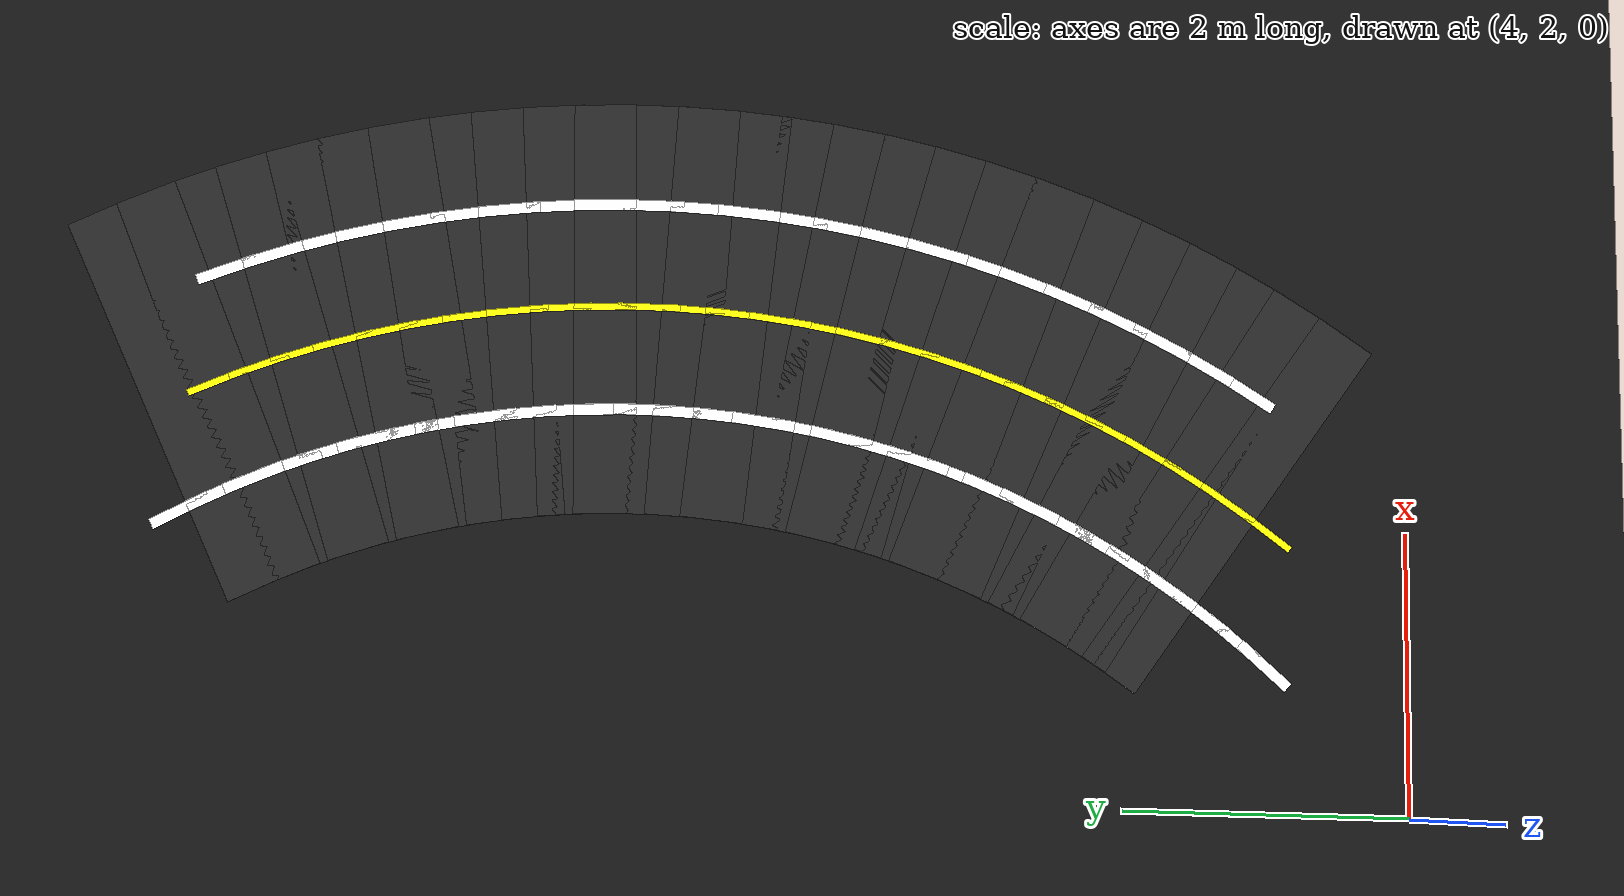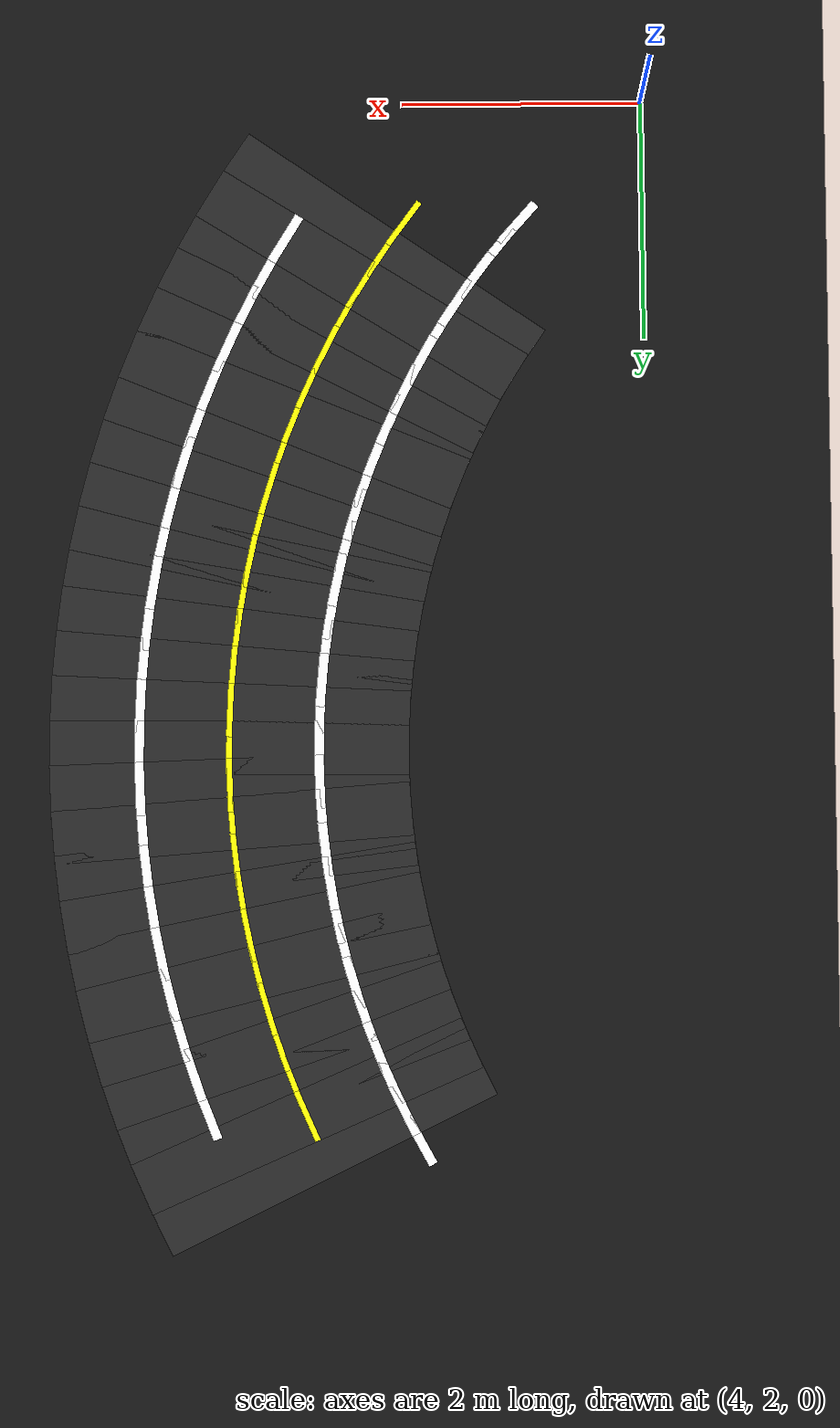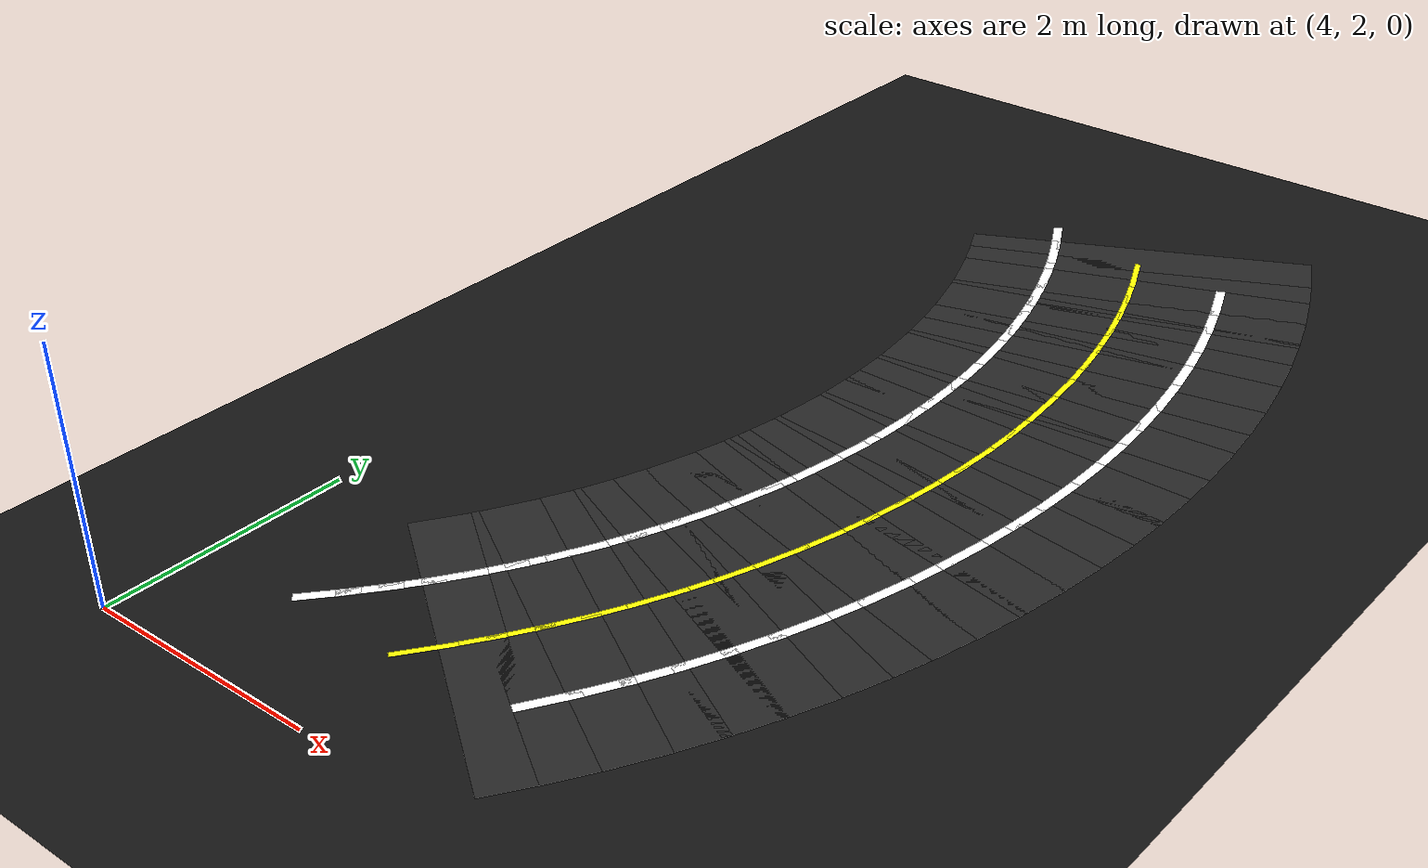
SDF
<sdf version="1.6">
 <world name="figure8_world">
  <model name="ground_plane">
   <static>true</static>
   <link name="link">
    <collision name="collision">
     <geometry><plane><normal>0 0 1</normal><size>100 100</size></plane></geometry>
    </collision>
    <visual name="visual">
     <geometry><plane><normal>0 0 1</normal><size>100 100</size></plane></geometry>
     <material><ambient>0.08 0.08 0.08 1</ambient><diffuse>0.08 0.08 0.08 1</diffuse></material>
    </visual>
   </link>
  </model>
  <model name="seg_00058">
   <static>true</static>
   <pose>5.0415 3.0116 0.0030 0 0 0.8434</pose>
   <link name="link">
    <collision name="collision"><geometry><box><size>0.4500 0.0800 0.002</size></box></geometry></collision>
    <visual name="visual">
     <geometry><box><size>0.4500 0.0800 0.002</size></box></geometry>
     <material><ambient>1 1 1 1</ambient><diffuse>1 1 1 1</diffuse></material>
    </visual>
   </link>
  </model>
  <model name="seg_00062">
   <static>true</static>
   <pose>5.2263 3.2282 0.0030 0 0 0.8855</pose>
   <link name="link">
    <collision name="collision"><geometry><box><size>0.4500 0.0800 0.002</size></box></geometry></collision>
    <visual name="visual">
     <geometry><box><size>0.4500 0.0800 0.002</size></box></geometry>
     <material><ambient>1 1 1 1</ambient><diffuse>1 1 1 1</diffuse></material>
    </visual>
   </link>
  </model>
  <model name="seg_00066">
   <static>true</static>
   <pose>5.4017 3.4523 0.0030 0 0 0.9277</pose>
   <link name="link">
    <collision name="collision"><geometry><box><size>0.4500 0.0800 0.002</size></box></geometry></collision>
    <visual name="visual">
     <geometry><box><size>0.4500 0.0800 0.002</size></box></geometry>
     <material><ambient>1 1 1 1</ambient><diffuse>1 1 1 1</diffuse></material>
    </visual>
   </link>
  </model>
  <model name="seg_00067">
   <static>true</static>
   <pose>6.0019 3.0025 0.0030 0 0 0.9277</pose>
   <link name="link">
    <collision name="collision"><geometry><box><size>0.4500 0.0500 0.002</size></box></geometry></collision>
    <visual name="visual">
     <geometry><box><size>0.4500 0.0500 0.002</size></box></geometry>
     <material><ambient>1 1 0 1</ambient><diffuse>1 1 0 1</diffuse></material>
    </visual>
   </link>
  </model>
  <model name="seg_00068">
   <static>true</static>
   <pose>6.1862 3.2596 0.0010 0 0 0.9699</pose>
   <link name="link">
    <collision name="collision"><geometry><box><size>0.4500 3.0000 0.002</size></box></geometry></collision>
    <visual name="visual">
     <geometry><box><size>0.4500 3.0000 0.002</size></box></geometry>
     <material><ambient>0.15 0.15 0.15 1</ambient><diffuse>0.15 0.15 0.15 1</diffuse></material>
    </visual>
   </link>
  </model>
  <model name="seg_00070">
   <static>true</static>
   <pose>5.5675 3.6836 0.0030 0 0 0.9699</pose>
   <link name="link">
    <collision name="collision"><geometry><box><size>0.4500 0.0800 0.002</size></box></geometry></collision>
    <visual name="visual">
     <geometry><box><size>0.4500 0.0800 0.002</size></box></geometry>
     <material><ambient>1 1 1 1</ambient><diffuse>1 1 1 1</diffuse></material>
    </visual>
   </link>
  </model>
  <model name="seg_00071">
   <static>true</static>
   <pose>6.1862 3.2596 0.0030 0 0 0.9699</pose>
   <link name="link">
    <collision name="collision"><geometry><box><size>0.4500 0.0500 0.002</size></box></geometry></collision>
    <visual name="visual">
     <geometry><box><size>0.4500 0.0500 0.002</size></box></geometry>
     <material><ambient>1 1 0 1</ambient><diffuse>1 1 0 1</diffuse></material>
    </visual>
   </link>
  </model>
  <model name="seg_00072">
   <static>true</static>
   <pose>6.3594 3.5241 0.0010 0 0 1.0121</pose>
   <link name="link">
    <collision name="collision"><geometry><box><size>0.4500 3.0000 0.002</size></box></geometry></collision>
    <visual name="visual">
     <geometry><box><size>0.4500 3.0000 0.002</size></box></geometry>
     <material><ambient>0.15 0.15 0.15 1</ambient><diffuse>0.15 0.15 0.15 1</diffuse></material>
    </visual>
   </link>
  </model>
  <model name="seg_00073">
   <static>true</static>
   <pose>6.9954 3.1265 0.0030 0 0 1.0121</pose>
   <link name="link">
    <collision name="collision"><geometry><box><size>0.4500 0.0800 0.002</size></box></geometry></collision>
    <visual name="visual">
     <geometry><box><size>0.4500 0.0800 0.002</size></box></geometry>
     <material><ambient>1 1 1 1</ambient><diffuse>1 1 1 1</diffuse></material>
    </visual>
   </link>
  </model>
  <model name="seg_00074">
   <static>true</static>
   <pose>5.7235 3.9217 0.0030 0 0 1.0121</pose>
   <link name="link">
    <collision name="collision"><geometry><box><size>0.4500 0.0800 0.002</size></box></geometry></collision>
    <visual name="visual">
     <geometry><box><size>0.4500 0.0800 0.002</size></box></geometry>
     <material><ambient>1 1 1 1</ambient><diffuse>1 1 1 1</diffuse></material>
    </visual>
   </link>
  </model>
  <model name="seg_00075">
   <static>true</static>
   <pose>6.3594 3.5241 0.0030 0 0 1.0121</pose>
   <link name="link">
    <collision name="collision"><geometry><box><size>0.4500 0.0500 0.002</size></box></geometry></collision>
    <visual name="visual">
     <geometry><box><size>0.4500 0.0500 0.002</size></box></geometry>
     <material><ambient>1 1 0 1</ambient><diffuse>1 1 0 1</diffuse></material>
    </visual>
   </link>
  </model>
  <model name="seg_00076">
   <static>true</static>
   <pose>6.5214 3.7957 0.0010 0 0 1.0542</pose>
   <link name="link">
    <collision name="collision"><geometry><box><size>0.4500 3.0000 0.002</size></box></geometry></collision>
    <visual name="visual">
     <geometry><box><size>0.4500 3.0000 0.002</size></box></geometry>
     <material><ambient>0.15 0.15 0.15 1</ambient><diffuse>0.15 0.15 0.15 1</diffuse></material>
    </visual>
   </link>
  </model>
  <model name="seg_00077">
   <static>true</static>
   <pose>7.1735 3.4253 0.0030 0 0 1.0542</pose>
   <link name="link">
    <collision name="collision"><geometry><box><size>0.4500 0.0800 0.002</size></box></geometry></collision>
    <visual name="visual">
     <geometry><box><size>0.4500 0.0800 0.002</size></box></geometry>
     <material><ambient>1 1 1 1</ambient><diffuse>1 1 1 1</diffuse></material>
    </visual>
   </link>
  </model>
  <model name="seg_00078">
   <static>true</static>
   <pose>5.8692 4.1662 0.0030 0 0 1.0542</pose>
   <link name="link">
    <collision name="collision"><geometry><box><size>0.4500 0.0800 0.002</size></box></geometry></collision>
    <visual name="visual">
     <geometry><box><size>0.4500 0.0800 0.002</size></box></geometry>
     <material><ambient>1 1 1 1</ambient><diffuse>1 1 1 1</diffuse></material>
    </visual>
   </link>
  </model>
  <model name="seg_00079">
   <static>true</static>
   <pose>6.5214 3.7957 0.0030 0 0 1.0542</pose>
   <link name="link">
    <collision name="collision"><geometry><box><size>0.4500 0.0500 0.002</size></box></geometry></collision>
    <visual name="visual">
     <geometry><box><size>0.4500 0.0500 0.002</size></box></geometry>
     <material><ambient>1 1 0 1</ambient><diffuse>1 1 0 1</diffuse></material>
    </visual>
   </link>
  </model>
  <model name="seg_00080">
   <static>true</static>
   <pose>6.6717 4.0740 0.0010 0 0 1.0964</pose>
   <link name="link">
    <collision name="collision"><geometry><box><size>0.4500 3.0000 0.002</size></box></geometry></collision>
    <visual name="visual">
     <geometry><box><size>0.4500 3.0000 0.002</size></box></geometry>
     <material><ambient>0.15 0.15 0.15 1</ambient><diffuse>0.15 0.15 0.15 1</diffuse></material>
    </visual>
   </link>
  </model>
  <model name="seg_00081">
   <static>true</static>
   <pose>7.3389 3.7313 0.0030 0 0 1.0964</pose>
   <link name="link">
    <collision name="collision"><geometry><box><size>0.4500 0.0800 0.002</size></box></geometry></collision>
    <visual name="visual">
     <geometry><box><size>0.4500 0.0800 0.002</size></box></geometry>
     <material><ambient>1 1 1 1</ambient><diffuse>1 1 1 1</diffuse></material>
    </visual>
   </link>
  </model>
  <model name="seg_00082">
   <static>true</static>
   <pose>6.0046 4.4166 0.0030 0 0 1.0964</pose>
   <link name="link">
    <collision name="collision"><geometry><box><size>0.4500 0.0800 0.002</size></box></geometry></collision>
    <visual name="visual">
     <geometry><box><size>0.4500 0.0800 0.002</size></box></geometry>
     <material><ambient>1 1 1 1</ambient><diffuse>1 1 1 1</diffuse></material>
    </visual>
   </link>
  </model>
  <model name="seg_00083">
   <static>true</static>
   <pose>6.6717 4.0740 0.0030 0 0 1.0964</pose>
   <link name="link">
    <collision name="collision"><geometry><box><size>0.4500 0.0500 0.002</size></box></geometry></collision>
    <visual name="visual">
     <geometry><box><size>0.4500 0.0500 0.002</size></box></geometry>
     <material><ambient>1 1 0 1</ambient><diffuse>1 1 0 1</diffuse></material>
    </visual>
   </link>
  </model>
  <model name="seg_00084">
   <static>true</static>
   <pose>6.8102 4.3583 0.0010 0 0 1.1386</pose>
   <link name="link">
    <collision name="collision"><geometry><box><size>0.4500 3.0000 0.002</size></box></geometry></collision>
    <visual name="visual">
     <geometry><box><size>0.4500 3.0000 0.002</size></box></geometry>
     <material><ambient>0.15 0.15 0.15 1</ambient><diffuse>0.15 0.15 0.15 1</diffuse></material>
    </visual>
   </link>
  </model>
  <model name="seg_00085">
   <static>true</static>
   <pose>7.4913 4.0441 0.0030 0 0 1.1386</pose>
   <link name="link">
    <collision name="collision"><geometry><box><size>0.4500 0.0800 0.002</size></box></geometry></collision>
    <visual name="visual">
     <geometry><box><size>0.4500 0.0800 0.002</size></box></geometry>
     <material><ambient>1 1 1 1</ambient><diffuse>1 1 1 1</diffuse></material>
    </visual>
   </link>
  </model>
  <model name="seg_00086">
   <static>true</static>
   <pose>6.1292 4.6724 0.0030 0 0 1.1386</pose>
   <link name="link">
    <collision name="collision"><geometry><box><size>0.4500 0.0800 0.002</size></box></geometry></collision>
    <visual name="visual">
     <geometry><box><size>0.4500 0.0800 0.002</size></box></geometry>
     <material><ambient>1 1 1 1</ambient><diffuse>1 1 1 1</diffuse></material>
    </visual>
   </link>
  </model>
  <model name="seg_00087">
   <static>true</static>
   <pose>6.8102 4.3583 0.0030 0 0 1.1386</pose>
   <link name="link">
    <collision name="collision"><geometry><box><size>0.4500 0.0500 0.002</size></box></geometry></collision>
    <visual name="visual">
     <geometry><box><size>0.4500 0.0500 0.002</size></box></geometry>
     <material><ambient>1 1 0 1</ambient><diffuse>1 1 0 1</diffuse></material>
    </visual>
   </link>
  </model>
  <model name="seg_00088">
   <static>true</static>
   <pose>6.9366 4.6481 0.0010 0 0 1.1807</pose>
   <link name="link">
    <collision name="collision"><geometry><box><size>0.4500 3.0000 0.002</size></box></geometry></collision>
    <visual name="visual">
     <geometry><box><size>0.4500 3.0000 0.002</size></box></geometry>
     <material><ambient>0.15 0.15 0.15 1</ambient><diffuse>0.15 0.15 0.15 1</diffuse></material>
    </visual>
   </link>
  </model>
  <model name="seg_00089">
   <static>true</static>
   <pose>7.6303 4.3630 0.0030 0 0 1.1807</pose>
   <link name="link">
    <collision name="collision"><geometry><box><size>0.4500 0.0800 0.002</size></box></geometry></collision>
    <visual name="visual">
     <geometry><box><size>0.4500 0.0800 0.002</size></box></geometry>
     <material><ambient>1 1 1 1</ambient><diffuse>1 1 1 1</diffuse></material>
    </visual>
   </link>
  </model>
  <model name="seg_00090">
   <static>true</static>
   <pose>6.2430 4.9333 0.0030 0 0 1.1807</pose>
   <link name="link">
    <collision name="collision"><geometry><box><size>0.4500 0.0800 0.002</size></box></geometry></collision>
    <visual name="visual">
     <geometry><box><size>0.4500 0.0800 0.002</size></box></geometry>
     <material><ambient>1 1 1 1</ambient><diffuse>1 1 1 1</diffuse></material>
    </visual>
   </link>
  </model>
  <model name="seg_00091">
   <static>true</static>
   <pose>6.9366 4.6481 0.0030 0 0 1.1807</pose>
   <link name="link">
    <collision name="collision"><geometry><box><size>0.4500 0.0500 0.002</size></box></geometry></collision>
    <visual name="visual">
     <geometry><box><size>0.4500 0.0500 0.002</size></box></geometry>
     <material><ambient>1 1 0 1</ambient><diffuse>1 1 0 1</diffuse></material>
    </visual>
   </link>
  </model>
  <model name="seg_00092">
   <static>true</static>
   <pose>7.0507 4.9431 0.0010 0 0 1.2229</pose>
   <link name="link">
    <collision name="collision"><geometry><box><size>0.4500 3.0000 0.002</size></box></geometry></collision>
    <visual name="visual">
     <geometry><box><size>0.4500 3.0000 0.002</size></box></geometry>
     <material><ambient>0.15 0.15 0.15 1</ambient><diffuse>0.15 0.15 0.15 1</diffuse></material>
    </visual>
   </link>
  </model>
  <model name="seg_00093">
   <static>true</static>
   <pose>7.7558 4.6874 0.0030 0 0 1.2229</pose>
   <link name="link">
    <collision name="collision"><geometry><box><size>0.4500 0.0800 0.002</size></box></geometry></collision>
    <visual name="visual">
     <geometry><box><size>0.4500 0.0800 0.002</size></box></geometry>
     <material><ambient>1 1 1 1</ambient><diffuse>1 1 1 1</diffuse></material>
    </visual>
   </link>
  </model>
  <model name="seg_00094">
   <static>true</static>
   <pose>6.3456 5.1988 0.0030 0 0 1.2229</pose>
   <link name="link">
    <collision name="collision"><geometry><box><size>0.4500 0.0800 0.002</size></box></geometry></collision>
    <visual name="visual">
     <geometry><box><size>0.4500 0.0800 0.002</size></box></geometry>
     <material><ambient>1 1 1 1</ambient><diffuse>1 1 1 1</diffuse></material>
    </visual>
   </link>
  </model>
  <model name="seg_00095">
   <static>true</static>
   <pose>7.0507 4.9431 0.0030 0 0 1.2229</pose>
   <link name="link">
    <collision name="collision"><geometry><box><size>0.4500 0.0500 0.002</size></box></geometry></collision>
    <visual name="visual">
     <geometry><box><size>0.4500 0.0500 0.002</size></box></geometry>
     <material><ambient>1 1 0 1</ambient><diffuse>1 1 0 1</diffuse></material>
    </visual>
   </link>
  </model>
  <model name="seg_00096">
   <static>true</static>
   <pose>7.1522 5.2426 0.0010 0 0 1.2651</pose>
   <link name="link">
    <collision name="collision"><geometry><box><size>0.4500 3.0000 0.002</size></box></geometry></collision>
    <visual name="visual">
     <geometry><box><size>0.4500 3.0000 0.002</size></box></geometry>
     <material><ambient>0.15 0.15 0.15 1</ambient><diffuse>0.15 0.15 0.15 1</diffuse></material>
    </visual>
   </link>
  </model>
  <model name="seg_00097">
   <static>true</static>
   <pose>7.8674 5.0169 0.0030 0 0 1.2651</pose>
   <link name="link">
    <collision name="collision"><geometry><box><size>0.4500 0.0800 0.002</size></box></geometry></collision>
    <visual name="visual">
     <geometry><box><size>0.4500 0.0800 0.002</size></box></geometry>
     <material><ambient>1 1 1 1</ambient><diffuse>1 1 1 1</diffuse></material>
    </visual>
   </link>
  </model>
  <model name="seg_00098">
   <static>true</static>
   <pose>6.4370 5.4684 0.0030 0 0 1.2651</pose>
   <link name="link">
    <collision name="collision"><geometry><box><size>0.4500 0.0800 0.002</size></box></geometry></collision>
    <visual name="visual">
     <geometry><box><size>0.4500 0.0800 0.002</size></box></geometry>
     <material><ambient>1 1 1 1</ambient><diffuse>1 1 1 1</diffuse></material>
    </visual>
   </link>
  </model>
  <model name="seg_00099">
   <static>true</static>
   <pose>7.1522 5.2426 0.0030 0 0 1.2651</pose>
   <link name="link">
    <collision name="collision"><geometry><box><size>0.4500 0.0500 0.002</size></box></geometry></collision>
    <visual name="visual">
     <geometry><box><size>0.4500 0.0500 0.002</size></box></geometry>
     <material><ambient>1 1 0 1</ambient><diffuse>1 1 0 1</diffuse></material>
    </visual>
   </link>
  </model>
  <model name="seg_00100">
   <static>true</static>
   <pose>7.2410 5.5461 0.0010 0 0 1.3072</pose>
   <link name="link">
    <collision name="collision"><geometry><box><size>0.4500 3.0000 0.002</size></box></geometry></collision>
    <visual name="visual">
     <geometry><box><size>0.4500 3.0000 0.002</size></box></geometry>
     <material><ambient>0.15 0.15 0.15 1</ambient><diffuse>0.15 0.15 0.15 1</diffuse></material>
    </visual>
   </link>
  </model>
  <model name="seg_00101">
   <static>true</static>
   <pose>7.9651 5.3507 0.0030 0 0 1.3072</pose>
   <link name="link">
    <collision name="collision"><geometry><box><size>0.4500 0.0800 0.002</size></box></geometry></collision>
    <visual name="visual">
     <geometry><box><size>0.4500 0.0800 0.002</size></box></geometry>
     <material><ambient>1 1 1 1</ambient><diffuse>1 1 1 1</diffuse></material>
    </visual>
   </link>
  </model>
  <model name="seg_00102">
   <static>true</static>
   <pose>6.5169 5.7415 0.0030 0 0 1.3072</pose>
   <link name="link">
    <collision name="collision"><geometry><box><size>0.4500 0.0800 0.002</size></box></geometry></collision>
    <visual name="visual">
     <geometry><box><size>0.4500 0.0800 0.002</size></box></geometry>
     <material><ambient>1 1 1 1</ambient><diffuse>1 1 1 1</diffuse></material>
    </visual>
   </link>
  </model>
  <model name="seg_00103">
   <static>true</static>
   <pose>7.2410 5.5461 0.0030 0 0 1.3072</pose>
   <link name="link">
    <collision name="collision"><geometry><box><size>0.4500 0.0500 0.002</size></box></geometry></collision>
    <visual name="visual">
     <geometry><box><size>0.4500 0.0500 0.002</size></box></geometry>
     <material><ambient>1 1 0 1</ambient><diffuse>1 1 0 1</diffuse></material>
    </visual>
   </link>
  </model>
  <model name="seg_00104">
   <static>true</static>
   <pose>7.3170 5.8531 0.0010 0 0 1.3494</pose>
   <link name="link">
    <collision name="collision"><geometry><box><size>0.4500 3.0000 0.002</size></box></geometry></collision>
    <visual name="visual">
     <geometry><box><size>0.4500 3.0000 0.002</size></box></geometry>
     <material><ambient>0.15 0.15 0.15 1</ambient><diffuse>0.15 0.15 0.15 1</diffuse></material>
    </visual>
   </link>
  </model>
  <model name="seg_00105">
   <static>true</static>
   <pose>8.0486 5.6884 0.0030 0 0 1.3494</pose>
   <link name="link">
    <collision name="collision"><geometry><box><size>0.4500 0.0800 0.002</size></box></geometry></collision>
    <visual name="visual">
     <geometry><box><size>0.4500 0.0800 0.002</size></box></geometry>
     <material><ambient>1 1 1 1</ambient><diffuse>1 1 1 1</diffuse></material>
    </visual>
   </link>
  </model>
  <model name="seg_00106">
   <static>true</static>
   <pose>6.5853 6.0178 0.0030 0 0 1.3494</pose>
   <link name="link">
    <collision name="collision"><geometry><box><size>0.4500 0.0800 0.002</size></box></geometry></collision>
    <visual name="visual">
     <geometry><box><size>0.4500 0.0800 0.002</size></box></geometry>
     <material><ambient>1 1 1 1</ambient><diffuse>1 1 1 1</diffuse></material>
    </visual>
   </link>
  </model>
  <model name="seg_00107">
   <static>true</static>
   <pose>7.3170 5.8531 0.0030 0 0 1.3494</pose>
   <link name="link">
    <collision name="collision"><geometry><box><size>0.4500 0.0500 0.002</size></box></geometry></collision>
    <visual name="visual">
     <geometry><box><size>0.4500 0.0500 0.002</size></box></geometry>
     <material><ambient>1 1 0 1</ambient><diffuse>1 1 0 1</diffuse></material>
    </visual>
   </link>
  </model>
  <model name="seg_00108">
   <static>true</static>
   <pose>7.3799 6.1630 0.0010 0 0 1.3916</pose>
   <link name="link">
    <collision name="collision"><geometry><box><size>0.4500 3.0000 0.002</size></box></geometry></collision>
    <visual name="visual">
     <geometry><box><size>0.4500 3.0000 0.002</size></box></geometry>
     <material><ambient>0.15 0.15 0.15 1</ambient><diffuse>0.15 0.15 0.15 1</diffuse></material>
    </visual>
   </link>
  </model>
  <model name="seg_00109">
   <static>true</static>
   <pose>8.1179 6.0294 0.0030 0 0 1.3916</pose>
   <link name="link">
    <collision name="collision"><geometry><box><size>0.4500 0.0800 0.002</size></box></geometry></collision>
    <visual name="visual">
     <geometry><box><size>0.4500 0.0800 0.002</size></box></geometry>
     <material><ambient>1 1 1 1</ambient><diffuse>1 1 1 1</diffuse></material>
    </visual>
   </link>
  </model>
  <model name="seg_00110">
   <static>true</static>
   <pose>6.6419 6.2967 0.0030 0 0 1.3916</pose>
   <link name="link">
    <collision name="collision"><geometry><box><size>0.4500 0.0800 0.002</size></box></geometry></collision>
    <visual name="visual">
     <geometry><box><size>0.4500 0.0800 0.002</size></box></geometry>
     <material><ambient>1 1 1 1</ambient><diffuse>1 1 1 1</diffuse></material>
    </visual>
   </link>
  </model>
  <model name="seg_00111">
   <static>true</static>
   <pose>7.3799 6.1630 0.0030 0 0 1.3916</pose>
   <link name="link">
    <collision name="collision"><geometry><box><size>0.4500 0.0500 0.002</size></box></geometry></collision>
    <visual name="visual">
     <geometry><box><size>0.4500 0.0500 0.002</size></box></geometry>
     <material><ambient>1 1 0 1</ambient><diffuse>1 1 0 1</diffuse></material>
    </visual>
   </link>
  </model>
  <model name="seg_00112">
   <static>true</static>
   <pose>7.4297 6.4753 0.0010 0 0 1.4337</pose>
   <link name="link">
    <collision name="collision"><geometry><box><size>0.4500 3.0000 0.002</size></box></geometry></collision>
    <visual name="visual">
     <geometry><box><size>0.4500 3.0000 0.002</size></box></geometry>
     <material><ambient>0.15 0.15 0.15 1</ambient><diffuse>0.15 0.15 0.15 1</diffuse></material>
    </visual>
   </link>
  </model>
  <model name="seg_00113">
   <static>true</static>
   <pose>8.1726 6.3729 0.0030 0 0 1.4337</pose>
   <link name="link">
    <collision name="collision"><geometry><box><size>0.4500 0.0800 0.002</size></box></geometry></collision>
    <visual name="visual">
     <geometry><box><size>0.4500 0.0800 0.002</size></box></geometry>
     <material><ambient>1 1 1 1</ambient><diffuse>1 1 1 1</diffuse></material>
    </visual>
   </link>
  </model>
  <model name="seg_00114">
   <static>true</static>
   <pose>6.6867 6.5778 0.0030 0 0 1.4337</pose>
   <link name="link">
    <collision name="collision"><geometry><box><size>0.4500 0.0800 0.002</size></box></geometry></collision>
    <visual name="visual">
     <geometry><box><size>0.4500 0.0800 0.002</size></box></geometry>
     <material><ambient>1 1 1 1</ambient><diffuse>1 1 1 1</diffuse></material>
    </visual>
   </link>
  </model>
  <model name="seg_00115">
   <static>true</static>
   <pose>7.4297 6.4753 0.0030 0 0 1.4337</pose>
   <link name="link">
    <collision name="collision"><geometry><box><size>0.4500 0.0500 0.002</size></box></geometry></collision>
    <visual name="visual">
     <geometry><box><size>0.4500 0.0500 0.002</size></box></geometry>
     <material><ambient>1 1 0 1</ambient><diffuse>1 1 0 1</diffuse></material>
    </visual>
   </link>
  </model>
  <model name="seg_00116">
   <static>true</static>
   <pose>7.4663 6.7895 0.0010 0 0 1.4759</pose>
   <link name="link">
    <collision name="collision"><geometry><box><size>0.4500 3.0000 0.002</size></box></geometry></collision>
    <visual name="visual">
     <geometry><box><size>0.4500 3.0000 0.002</size></box></geometry>
     <material><ambient>0.15 0.15 0.15 1</ambient><diffuse>0.15 0.15 0.15 1</diffuse></material>
    </visual>
   </link>
  </model>
  <model name="seg_00117">
   <static>true</static>
   <pose>8.2129 6.7184 0.0030 0 0 1.4759</pose>
   <link name="link">
    <collision name="collision"><geometry><box><size>0.4500 0.0800 0.002</size></box></geometry></collision>
    <visual name="visual">
     <geometry><box><size>0.4500 0.0800 0.002</size></box></geometry>
     <material><ambient>1 1 1 1</ambient><diffuse>1 1 1 1</diffuse></material>
    </visual>
   </link>
  </model>
  <model name="seg_00118">
   <static>true</static>
   <pose>6.7196 6.8605 0.0030 0 0 1.4759</pose>
   <link name="link">
    <collision name="collision"><geometry><box><size>0.4500 0.0800 0.002</size></box></geometry></collision>
    <visual name="visual">
     <geometry><box><size>0.4500 0.0800 0.002</size></box></geometry>
     <material><ambient>1 1 1 1</ambient><diffuse>1 1 1 1</diffuse></material>
    </visual>
   </link>
  </model>
  <model name="seg_00119">
   <static>true</static>
   <pose>7.4663 6.7895 0.0030 0 0 1.4759</pose>
   <link name="link">
    <collision name="collision"><geometry><box><size>0.4500 0.0500 0.002</size></box></geometry></collision>
    <visual name="visual">
     <geometry><box><size>0.4500 0.0500 0.002</size></box></geometry>
     <material><ambient>1 1 0 1</ambient><diffuse>1 1 0 1</diffuse></material>
    </visual>
   </link>
  </model>
  <model name="seg_00120">
   <static>true</static>
   <pose>7.4896 7.1048 0.0010 0 0 1.5181</pose>
   <link name="link">
    <collision name="collision"><geometry><box><size>0.4500 3.0000 0.002</size></box></geometry></collision>
    <visual name="visual">
     <geometry><box><size>0.4500 3.0000 0.002</size></box></geometry>
     <material><ambient>0.15 0.15 0.15 1</ambient><diffuse>0.15 0.15 0.15 1</diffuse></material>
    </visual>
   </link>
  </model>
  <model name="seg_00121">
   <static>true</static>
   <pose>8.2385 7.0653 0.0030 0 0 1.5181</pose>
   <link name="link">
    <collision name="collision"><geometry><box><size>0.4500 0.0800 0.002</size></box></geometry></collision>
    <visual name="visual">
     <geometry><box><size>0.4500 0.0800 0.002</size></box></geometry>
     <material><ambient>1 1 1 1</ambient><diffuse>1 1 1 1</diffuse></material>
    </visual>
   </link>
  </model>
  <model name="seg_00122">
   <static>true</static>
   <pose>6.7406 7.1444 0.0030 0 0 1.5181</pose>
   <link name="link">
    <collision name="collision"><geometry><box><size>0.4500 0.0800 0.002</size></box></geometry></collision>
    <visual name="visual">
     <geometry><box><size>0.4500 0.0800 0.002</size></box></geometry>
     <material><ambient>1 1 1 1</ambient><diffuse>1 1 1 1</diffuse></material>
    </visual>
   </link>
  </model>
  <model name="seg_00123">
   <static>true</static>
   <pose>7.4896 7.1048 0.0030 0 0 1.5181</pose>
   <link name="link">
    <collision name="collision"><geometry><box><size>0.4500 0.0500 0.002</size></box></geometry></collision>
    <visual name="visual">
     <geometry><box><size>0.4500 0.0500 0.002</size></box></geometry>
     <material><ambient>1 1 0 1</ambient><diffuse>1 1 0 1</diffuse></material>
    </visual>
   </link>
  </model>
  <model name="seg_00124">
   <static>true</static>
   <pose>7.4996 7.4209 0.0010 0 0 1.5603</pose>
   <link name="link">
    <collision name="collision"><geometry><box><size>0.4500 3.0000 0.002</size></box></geometry></collision>
    <visual name="visual">
     <geometry><box><size>0.4500 3.0000 0.002</size></box></geometry>
     <material><ambient>0.15 0.15 0.15 1</ambient><diffuse>0.15 0.15 0.15 1</diffuse></material>
    </visual>
   </link>
  </model>
  <model name="seg_00125">
   <static>true</static>
   <pose>8.2495 7.4130 0.0030 0 0 1.5603</pose>
   <link name="link">
    <collision name="collision"><geometry><box><size>0.4500 0.0800 0.002</size></box></geometry></collision>
    <visual name="visual">
     <geometry><box><size>0.4500 0.0800 0.002</size></box></geometry>
     <material><ambient>1 1 1 1</ambient><diffuse>1 1 1 1</diffuse></material>
    </visual>
   </link>
  </model>
  <model name="seg_00126">
   <static>true</static>
   <pose>6.7496 7.4288 0.0030 0 0 1.5603</pose>
   <link name="link">
    <collision name="collision"><geometry><box><size>0.4500 0.0800 0.002</size></box></geometry></collision>
    <visual name="visual">
     <geometry><box><size>0.4500 0.0800 0.002</size></box></geometry>
     <material><ambient>1 1 1 1</ambient><diffuse>1 1 1 1</diffuse></material>
    </visual>
   </link>
  </model>
  <model name="seg_00127">
   <static>true</static>
   <pose>7.4996 7.4209 0.0030 0 0 1.5603</pose>
   <link name="link">
    <collision name="collision"><geometry><box><size>0.4500 0.0500 0.002</size></box></geometry></collision>
    <visual name="visual">
     <geometry><box><size>0.4500 0.0500 0.002</size></box></geometry>
     <material><ambient>1 1 0 1</ambient><diffuse>1 1 0 1</diffuse></material>
    </visual>
   </link>
  </model>
  <model name="seg_00128">
   <static>true</static>
   <pose>7.4962 7.7372 0.0010 0 0 1.6024</pose>
   <link name="link">
    <collision name="collision"><geometry><box><size>0.4500 3.0000 0.002</size></box></geometry></collision>
    <visual name="visual">
     <geometry><box><size>0.4500 3.0000 0.002</size></box></geometry>
     <material><ambient>0.15 0.15 0.15 1</ambient><diffuse>0.15 0.15 0.15 1</diffuse></material>
    </visual>
   </link>
  </model>
  <model name="seg_00129">
   <static>true</static>
   <pose>8.2459 7.7609 0.0030 0 0 1.6024</pose>
   <link name="link">
    <collision name="collision"><geometry><box><size>0.4500 0.0800 0.002</size></box></geometry></collision>
    <visual name="visual">
     <geometry><box><size>0.4500 0.0800 0.002</size></box></geometry>
     <material><ambient>1 1 1 1</ambient><diffuse>1 1 1 1</diffuse></material>
    </visual>
   </link>
  </model>
  <model name="seg_00130">
   <static>true</static>
   <pose>6.7466 7.7134 0.0030 0 0 1.6024</pose>
   <link name="link">
    <collision name="collision"><geometry><box><size>0.4500 0.0800 0.002</size></box></geometry></collision>
    <visual name="visual">
     <geometry><box><size>0.4500 0.0800 0.002</size></box></geometry>
     <material><ambient>1 1 1 1</ambient><diffuse>1 1 1 1</diffuse></material>
    </visual>
   </link>
  </model>
  <model name="seg_00131">
   <static>true</static>
   <pose>7.4962 7.7372 0.0030 0 0 1.6024</pose>
   <link name="link">
    <collision name="collision"><geometry><box><size>0.4500 0.0500 0.002</size></box></geometry></collision>
    <visual name="visual">
     <geometry><box><size>0.4500 0.0500 0.002</size></box></geometry>
     <material><ambient>1 1 0 1</ambient><diffuse>1 1 0 1</diffuse></material>
    </visual>
   </link>
  </model>
  <model name="seg_00132">
   <static>true</static>
   <pose>7.4796 8.0530 0.0010 0 0 1.6446</pose>
   <link name="link">
    <collision name="collision"><geometry><box><size>0.4500 3.0000 0.002</size></box></geometry></collision>
    <visual name="visual">
     <geometry><box><size>0.4500 3.0000 0.002</size></box></geometry>
     <material><ambient>0.15 0.15 0.15 1</ambient><diffuse>0.15 0.15 0.15 1</diffuse></material>
    </visual>
   </link>
  </model>
  <model name="seg_00133">
   <static>true</static>
   <pose>8.2275 8.1083 0.0030 0 0 1.6446</pose>
   <link name="link">
    <collision name="collision"><geometry><box><size>0.4500 0.0800 0.002</size></box></geometry></collision>
    <visual name="visual">
     <geometry><box><size>0.4500 0.0800 0.002</size></box></geometry>
     <material><ambient>1 1 1 1</ambient><diffuse>1 1 1 1</diffuse></material>
    </visual>
   </link>
  </model>
  <model name="seg_00134">
   <static>true</static>
   <pose>6.7316 7.9977 0.0030 0 0 1.6446</pose>
   <link name="link">
    <collision name="collision"><geometry><box><size>0.4500 0.0800 0.002</size></box></geometry></collision>
    <visual name="visual">
     <geometry><box><size>0.4500 0.0800 0.002</size></box></geometry>
     <material><ambient>1 1 1 1</ambient><diffuse>1 1 1 1</diffuse></material>
    </visual>
   </link>
  </model>
  <model name="seg_00135">
   <static>true</static>
   <pose>7.4796 8.0530 0.0030 0 0 1.6446</pose>
   <link name="link">
    <collision name="collision"><geometry><box><size>0.4500 0.0500 0.002</size></box></geometry></collision>
    <visual name="visual">
     <geometry><box><size>0.4500 0.0500 0.002</size></box></geometry>
     <material><ambient>1 1 0 1</ambient><diffuse>1 1 0 1</diffuse></material>
    </visual>
   </link>
  </model>
  <model name="seg_00136">
   <static>true</static>
   <pose>7.4496 8.3678 0.0010 0 0 1.6868</pose>
   <link name="link">
    <collision name="collision"><geometry><box><size>0.4500 3.0000 0.002</size></box></geometry></collision>
    <visual name="visual">
     <geometry><box><size>0.4500 3.0000 0.002</size></box></geometry>
     <material><ambient>0.15 0.15 0.15 1</ambient><diffuse>0.15 0.15 0.15 1</diffuse></material>
    </visual>
   </link>
  </model>
  <model name="seg_00137">
   <static>true</static>
   <pose>8.1946 8.4546 0.0030 0 0 1.6868</pose>
   <link name="link">
    <collision name="collision"><geometry><box><size>0.4500 0.0800 0.002</size></box></geometry></collision>
    <visual name="visual">
     <geometry><box><size>0.4500 0.0800 0.002</size></box></geometry>
     <material><ambient>1 1 1 1</ambient><diffuse>1 1 1 1</diffuse></material>
    </visual>
   </link>
  </model>
  <model name="seg_00138">
   <static>true</static>
   <pose>6.7047 8.2810 0.0030 0 0 1.6868</pose>
   <link name="link">
    <collision name="collision"><geometry><box><size>0.4500 0.0800 0.002</size></box></geometry></collision>
    <visual name="visual">
     <geometry><box><size>0.4500 0.0800 0.002</size></box></geometry>
     <material><ambient>1 1 1 1</ambient><diffuse>1 1 1 1</diffuse></material>
    </visual>
   </link>
  </model>
  <model name="seg_00139">
   <static>true</static>
   <pose>7.4496 8.3678 0.0030 0 0 1.6868</pose>
   <link name="link">
    <collision name="collision"><geometry><box><size>0.4500 0.0500 0.002</size></box></geometry></collision>
    <visual name="visual">
     <geometry><box><size>0.4500 0.0500 0.002</size></box></geometry>
     <material><ambient>1 1 0 1</ambient><diffuse>1 1 0 1</diffuse></material>
    </visual>
   </link>
  </model>
  <model name="seg_00140">
   <static>true</static>
   <pose>7.4064 8.6811 0.0010 0 0 1.7289</pose>
   <link name="link">
    <collision name="collision"><geometry><box><size>0.4500 3.0000 0.002</size></box></geometry></collision>
    <visual name="visual">
     <geometry><box><size>0.4500 3.0000 0.002</size></box></geometry>
     <material><ambient>0.15 0.15 0.15 1</ambient><diffuse>0.15 0.15 0.15 1</diffuse></material>
    </visual>
   </link>
  </model>
  <model name="seg_00141">
   <static>true</static>
   <pose>8.1471 8.7992 0.0030 0 0 1.7289</pose>
   <link name="link">
    <collision name="collision"><geometry><box><size>0.4500 0.0800 0.002</size></box></geometry></collision>
    <visual name="visual">
     <geometry><box><size>0.4500 0.0800 0.002</size></box></geometry>
     <material><ambient>1 1 1 1</ambient><diffuse>1 1 1 1</diffuse></material>
    </visual>
   </link>
  </model>
  <model name="seg_00142">
   <static>true</static>
   <pose>6.6658 8.5630 0.0030 0 0 1.7289</pose>
   <link name="link">
    <collision name="collision"><geometry><box><size>0.4500 0.0800 0.002</size></box></geometry></collision>
    <visual name="visual">
     <geometry><box><size>0.4500 0.0800 0.002</size></box></geometry>
     <material><ambient>1 1 1 1</ambient><diffuse>1 1 1 1</diffuse></material>
    </visual>
   </link>
  </model>
  <model name="seg_00143">
   <static>true</static>
   <pose>7.4064 8.6811 0.0030 0 0 1.7289</pose>
   <link name="link">
    <collision name="collision"><geometry><box><size>0.4500 0.0500 0.002</size></box></geometry></collision>
    <visual name="visual">
     <geometry><box><size>0.4500 0.0500 0.002</size></box></geometry>
     <material><ambient>1 1 0 1</ambient><diffuse>1 1 0 1</diffuse></material>
    </visual>
   </link>
  </model>
  <model name="seg_00144">
   <static>true</static>
   <pose>7.3500 8.9922 0.0010 0 0 1.7711</pose>
   <link name="link">
    <collision name="collision"><geometry><box><size>0.4500 3.0000 0.002</size></box></geometry></collision>
    <visual name="visual">
     <geometry><box><size>0.4500 3.0000 0.002</size></box></geometry>
     <material><ambient>0.15 0.15 0.15 1</ambient><diffuse>0.15 0.15 0.15 1</diffuse></material>
    </visual>
   </link>
  </model>
  <model name="seg_00145">
   <static>true</static>
   <pose>8.0851 9.1415 0.0030 0 0 1.7711</pose>
   <link name="link">
    <collision name="collision"><geometry><box><size>0.4500 0.0800 0.002</size></box></geometry></collision>
    <visual name="visual">
     <geometry><box><size>0.4500 0.0800 0.002</size></box></geometry>
     <material><ambient>1 1 1 1</ambient><diffuse>1 1 1 1</diffuse></material>
    </visual>
   </link>
  </model>
  <model name="seg_00146">
   <static>true</static>
   <pose>6.6150 8.8430 0.0030 0 0 1.7711</pose>
   <link name="link">
    <collision name="collision"><geometry><box><size>0.4500 0.0800 0.002</size></box></geometry></collision>
    <visual name="visual">
     <geometry><box><size>0.4500 0.0800 0.002</size></box></geometry>
     <material><ambient>1 1 1 1</ambient><diffuse>1 1 1 1</diffuse></material>
    </visual>
   </link>
  </model>
  <model name="seg_00147">
   <static>true</static>
   <pose>7.3500 8.9922 0.0030 0 0 1.7711</pose>
   <link name="link">
    <collision name="collision"><geometry><box><size>0.4500 0.0500 0.002</size></box></geometry></collision>
    <visual name="visual">
     <geometry><box><size>0.4500 0.0500 0.002</size></box></geometry>
     <material><ambient>1 1 0 1</ambient><diffuse>1 1 0 1</diffuse></material>
    </visual>
   </link>
  </model>
  <model name="seg_00148">
   <static>true</static>
   <pose>7.2806 9.3008 0.0010 0 0 1.8133</pose>
   <link name="link">
    <collision name="collision"><geometry><box><size>0.4500 3.0000 0.002</size></box></geometry></collision>
    <visual name="visual">
     <geometry><box><size>0.4500 3.0000 0.002</size></box></geometry>
     <material><ambient>0.15 0.15 0.15 1</ambient><diffuse>0.15 0.15 0.15 1</diffuse></material>
    </visual>
   </link>
  </model>
  <model name="seg_00149">
   <static>true</static>
   <pose>8.0087 9.4808 0.0030 0 0 1.8133</pose>
   <link name="link">
    <collision name="collision"><geometry><box><size>0.4500 0.0800 0.002</size></box></geometry></collision>
    <visual name="visual">
     <geometry><box><size>0.4500 0.0800 0.002</size></box></geometry>
     <material><ambient>1 1 1 1</ambient><diffuse>1 1 1 1</diffuse></material>
    </visual>
   </link>
  </model>
  <model name="seg_00150">
   <static>true</static>
   <pose>6.5525 9.1207 0.0030 0 0 1.8133</pose>
   <link name="link">
    <collision name="collision"><geometry><box><size>0.4500 0.0800 0.002</size></box></geometry></collision>
    <visual name="visual">
     <geometry><box><size>0.4500 0.0800 0.002</size></box></geometry>
     <material><ambient>1 1 1 1</ambient><diffuse>1 1 1 1</diffuse></material>
    </visual>
   </link>
  </model>
  <model name="seg_00151">
   <static>true</static>
   <pose>7.2806 9.3008 0.0030 0 0 1.8133</pose>
   <link name="link">
    <collision name="collision"><geometry><box><size>0.4500 0.0500 0.002</size></box></geometry></collision>
    <visual name="visual">
     <geometry><box><size>0.4500 0.0500 0.002</size></box></geometry>
     <material><ambient>1 1 0 1</ambient><diffuse>1 1 0 1</diffuse></material>
    </visual>
   </link>
  </model>
  <model name="seg_00152">
   <static>true</static>
   <pose>7.1982 9.6061 0.0010 0 0 1.8554</pose>
   <link name="link">
    <collision name="collision"><geometry><box><size>0.4500 3.0000 0.002</size></box></geometry></collision>
    <visual name="visual">
     <geometry><box><size>0.4500 3.0000 0.002</size></box></geometry>
     <material><ambient>0.15 0.15 0.15 1</ambient><diffuse>0.15 0.15 0.15 1</diffuse></material>
    </visual>
   </link>
  </model>
  <model name="seg_00153">
   <static>true</static>
   <pose>7.9180 9.8167 0.0030 0 0 1.8554</pose>
   <link name="link">
    <collision name="collision"><geometry><box><size>0.4500 0.0800 0.002</size></box></geometry></collision>
    <visual name="visual">
     <geometry><box><size>0.4500 0.0800 0.002</size></box></geometry>
     <material><ambient>1 1 1 1</ambient><diffuse>1 1 1 1</diffuse></material>
    </visual>
   </link>
  </model>
  <model name="seg_00154">
   <static>true</static>
   <pose>6.4784 9.3955 0.0030 0 0 1.8554</pose>
   <link name="link">
    <collision name="collision"><geometry><box><size>0.4500 0.0800 0.002</size></box></geometry></collision>
    <visual name="visual">
     <geometry><box><size>0.4500 0.0800 0.002</size></box></geometry>
     <material><ambient>1 1 1 1</ambient><diffuse>1 1 1 1</diffuse></material>
    </visual>
   </link>
  </model>
  <model name="seg_00155">
   <static>true</static>
   <pose>7.1982 9.6061 0.0030 0 0 1.8554</pose>
   <link name="link">
    <collision name="collision"><geometry><box><size>0.4500 0.0500 0.002</size></box></geometry></collision>
    <visual name="visual">
     <geometry><box><size>0.4500 0.0500 0.002</size></box></geometry>
     <material><ambient>1 1 0 1</ambient><diffuse>1 1 0 1</diffuse></material>
    </visual>
   </link>
  </model>
  <model name="seg_00156">
   <static>true</static>
   <pose>7.1030 9.9077 0.0010 0 0 1.8976</pose>
   <link name="link">
    <collision name="collision"><geometry><box><size>0.4500 3.0000 0.002</size></box></geometry></collision>
    <visual name="visual">
     <geometry><box><size>0.4500 3.0000 0.002</size></box></geometry>
     <material><ambient>0.15 0.15 0.15 1</ambient><diffuse>0.15 0.15 0.15 1</diffuse></material>
    </visual>
   </link>
  </model>
  <model name="seg_00157">
   <static>true</static>
   <pose>7.8133 10.1484 0.0030 0 0 1.8976</pose>
   <link name="link">
    <collision name="collision"><geometry><box><size>0.4500 0.0800 0.002</size></box></geometry></collision>
    <visual name="visual">
     <geometry><box><size>0.4500 0.0800 0.002</size></box></geometry>
     <material><ambient>1 1 1 1</ambient><diffuse>1 1 1 1</diffuse></material>
    </visual>
   </link>
  </model>
  <model name="seg_00158">
   <static>true</static>
   <pose>6.3927 9.6669 0.0030 0 0 1.8976</pose>
   <link name="link">
    <collision name="collision"><geometry><box><size>0.4500 0.0800 0.002</size></box></geometry></collision>
    <visual name="visual">
     <geometry><box><size>0.4500 0.0800 0.002</size></box></geometry>
     <material><ambient>1 1 1 1</ambient><diffuse>1 1 1 1</diffuse></material>
    </visual>
   </link>
  </model>
  <model name="seg_00159">
   <static>true</static>
   <pose>7.1030 9.9077 0.0030 0 0 1.8976</pose>
   <link name="link">
    <collision name="collision"><geometry><box><size>0.4500 0.0500 0.002</size></box></geometry></collision>
    <visual name="visual">
     <geometry><box><size>0.4500 0.0500 0.002</size></box></geometry>
     <material><ambient>1 1 0 1</ambient><diffuse>1 1 0 1</diffuse></material>
    </visual>
   </link>
  </model>
  <model name="seg_00160">
   <static>true</static>
   <pose>6.9952 10.2050 0.0010 0 0 1.9398</pose>
   <link name="link">
    <collision name="collision"><geometry><box><size>0.4500 3.0000 0.002</size></box></geometry></collision>
    <visual name="visual">
     <geometry><box><size>0.4500 3.0000 0.002</size></box></geometry>
     <material><ambient>0.15 0.15 0.15 1</ambient><diffuse>0.15 0.15 0.15 1</diffuse></material>
    </visual>
   </link>
  </model>
  <model name="seg_00161">
   <static>true</static>
   <pose>7.6947 10.4755 0.0030 0 0 1.9398</pose>
   <link name="link">
    <collision name="collision"><geometry><box><size>0.4500 0.0800 0.002</size></box></geometry></collision>
    <visual name="visual">
     <geometry><box><size>0.4500 0.0800 0.002</size></box></geometry>
     <material><ambient>1 1 1 1</ambient><diffuse>1 1 1 1</diffuse></material>
    </visual>
   </link>
  </model>
  <model name="seg_00162">
   <static>true</static>
   <pose>6.2957 9.9345 0.0030 0 0 1.9398</pose>
   <link name="link">
    <collision name="collision"><geometry><box><size>0.4500 0.0800 0.002</size></box></geometry></collision>
    <visual name="visual">
     <geometry><box><size>0.4500 0.0800 0.002</size></box></geometry>
     <material><ambient>1 1 1 1</ambient><diffuse>1 1 1 1</diffuse></material>
    </visual>
   </link>
  </model>
  <model name="seg_00163">
   <static>true</static>
   <pose>6.9952 10.2050 0.0030 0 0 1.9398</pose>
   <link name="link">
    <collision name="collision"><geometry><box><size>0.4500 0.0500 0.002</size></box></geometry></collision>
    <visual name="visual">
     <geometry><box><size>0.4500 0.0500 0.002</size></box></geometry>
     <material><ambient>1 1 0 1</ambient><diffuse>1 1 0 1</diffuse></material>
    </visual>
   </link>
  </model>
  <model name="seg_00164">
   <static>true</static>
   <pose>6.8750 10.4975 0.0010 0 0 1.9819</pose>
   <link name="link">
    <collision name="collision"><geometry><box><size>0.4500 3.0000 0.002</size></box></geometry></collision>
    <visual name="visual">
     <geometry><box><size>0.4500 3.0000 0.002</size></box></geometry>
     <material><ambient>0.15 0.15 0.15 1</ambient><diffuse>0.15 0.15 0.15 1</diffuse></material>
    </visual>
   </link>
  </model>
  <model name="seg_00166">
   <static>true</static>
   <pose>6.1875 10.1977 0.0030 0 0 1.9819</pose>
   <link name="link">
    <collision name="collision"><geometry><box><size>0.4500 0.0800 0.002</size></box></geometry></collision>
    <visual name="visual">
     <geometry><box><size>0.4500 0.0800 0.002</size></box></geometry>
     <material><ambient>1 1 1 1</ambient><diffuse>1 1 1 1</diffuse></material>
    </visual>
   </link>
  </model>
  <model name="seg_00167">
   <static>true</static>
   <pose>6.8750 10.4975 0.0030 0 0 1.9819</pose>
   <link name="link">
    <collision name="collision"><geometry><box><size>0.4500 0.0500 0.002</size></box></geometry></collision>
    <visual name="visual">
     <geometry><box><size>0.4500 0.0500 0.002</size></box></geometry>
     <material><ambient>1 1 0 1</ambient><diffuse>1 1 0 1</diffuse></material>
    </visual>
   </link>
  </model>
  <model name="seg_00168">
   <static>true</static>
   <pose>6.7425 10.7846 0.0010 0 0 2.0241</pose>
   <link name="link">
    <collision name="collision"><geometry><box><size>0.4500 3.0000 0.002</size></box></geometry></collision>
    <visual name="visual">
     <geometry><box><size>0.4500 3.0000 0.002</size></box></geometry>
     <material><ambient>0.15 0.15 0.15 1</ambient><diffuse>0.15 0.15 0.15 1</diffuse></material>
    </visual>
   </link>
  </model>
  <model name="seg_00170">
   <static>true</static>
   <pose>6.0682 10.4562 0.0030 0 0 2.0241</pose>
   <link name="link">
    <collision name="collision"><geometry><box><size>0.4500 0.0800 0.002</size></box></geometry></collision>
    <visual name="visual">
     <geometry><box><size>0.4500 0.0800 0.002</size></box></geometry>
     <material><ambient>1 1 1 1</ambient><diffuse>1 1 1 1</diffuse></material>
    </visual>
   </link>
  </model>
  <model name="seg_00174">
   <static>true</static>
   <pose>5.9382 10.7094 0.0030 0 0 2.0663</pose>
   <link name="link">
    <collision name="collision"><geometry><box><size>0.4500 0.0800 0.002</size></box></geometry></collision>
    <visual name="visual">
     <geometry><box><size>0.4500 0.0800 0.002</size></box></geometry>
     <material><ambient>1 1 1 1</ambient><diffuse>1 1 1 1</diffuse></material>
    </visual>
   </link>
  </model>
 </world>
</sdf>
